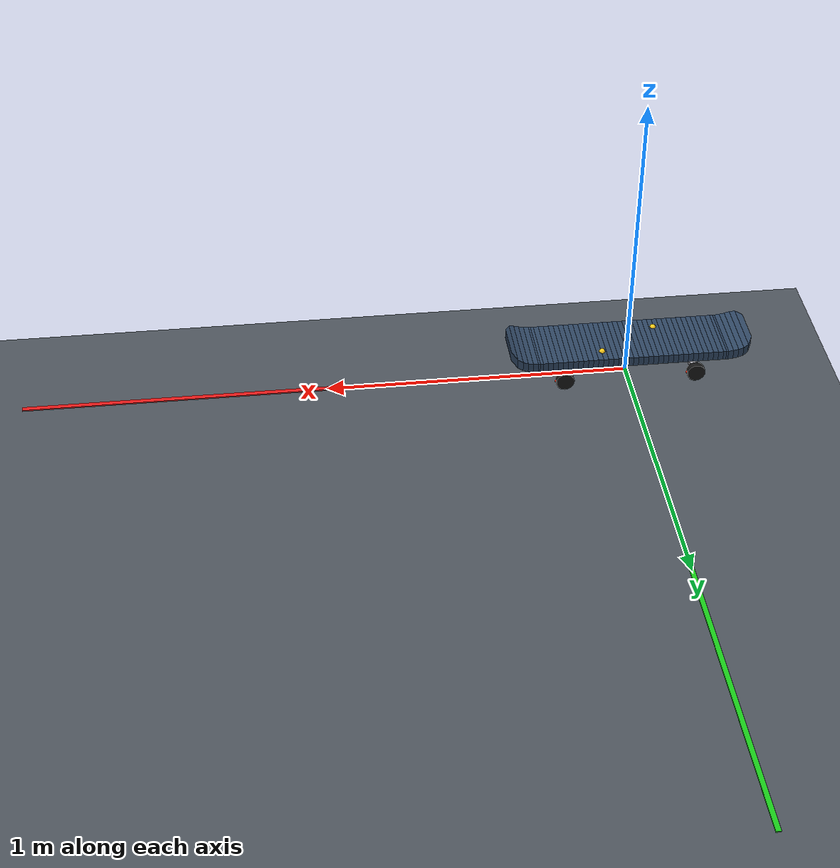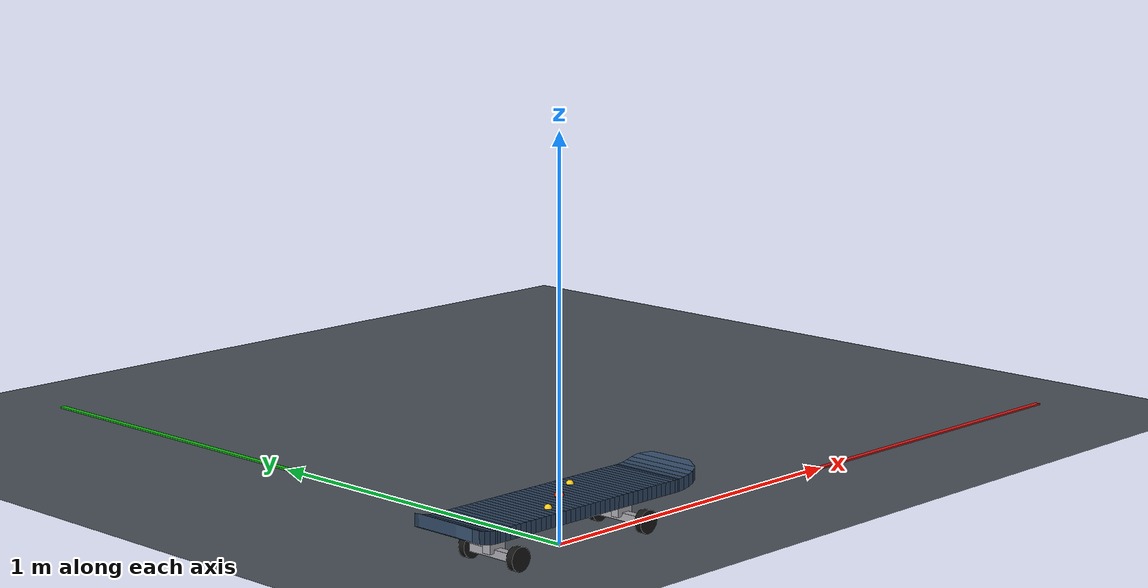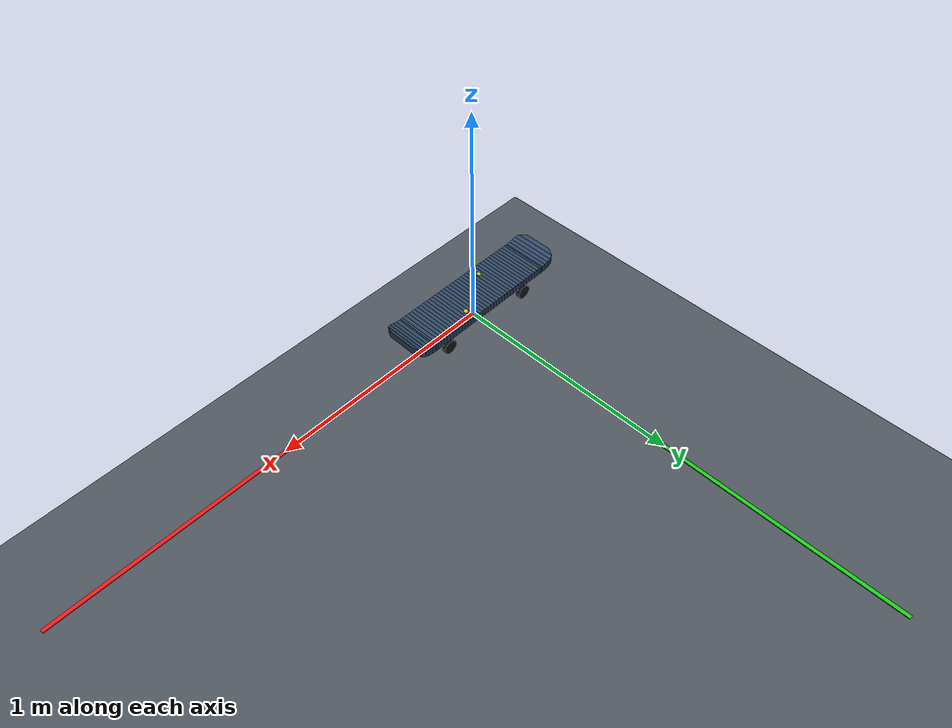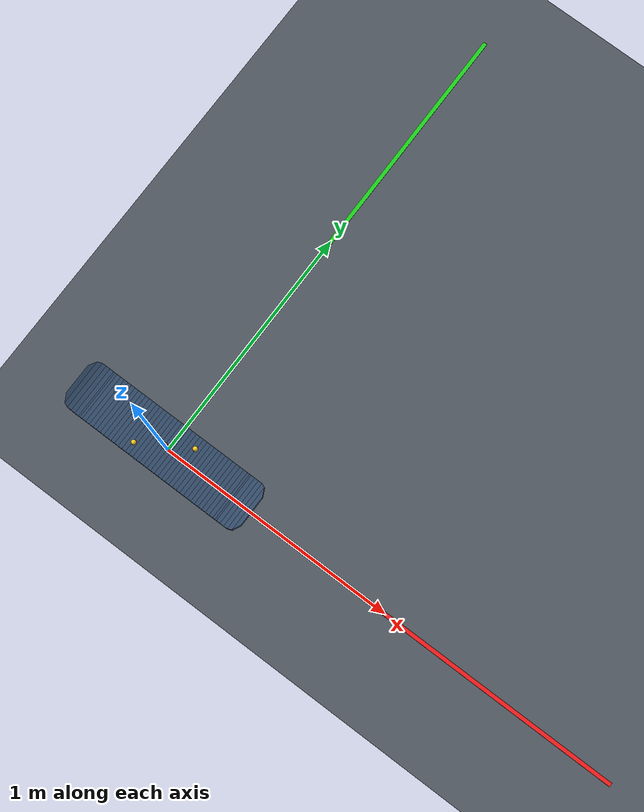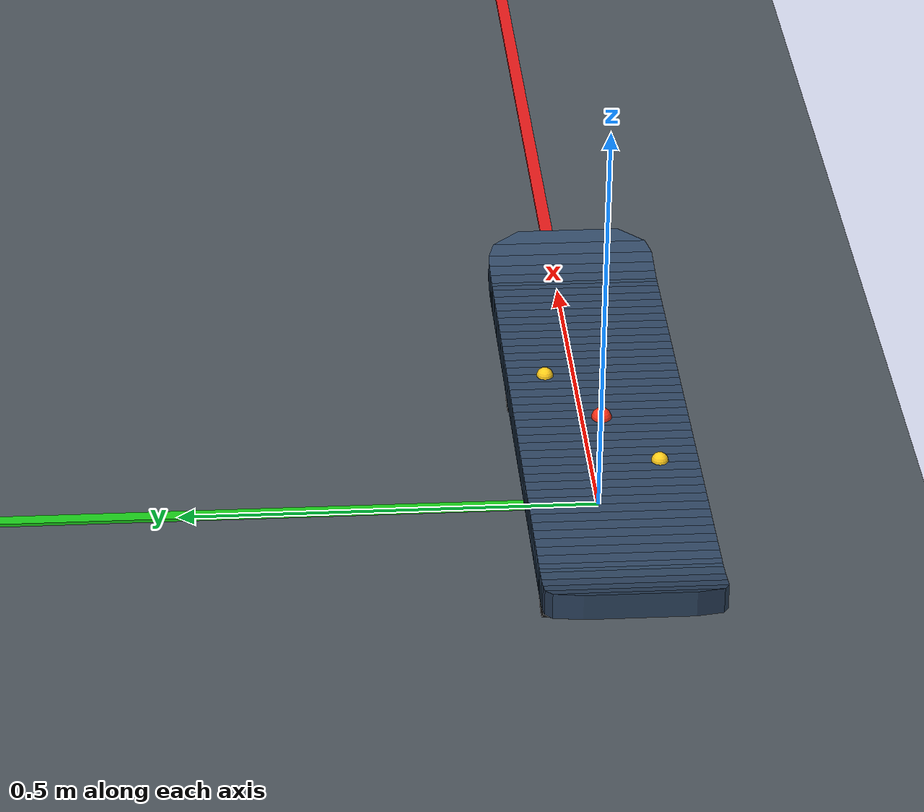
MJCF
<mujoco model="skate-sim-board-street-truck">
      <compiler angle="radian" coordinate="local"/>
      <option gravity="0 0 -9.81" integrator="implicitfast" timestep=".002"/>
      <visual><headlight diffuse=".8 .8 .8" ambient=".35 .35 .35"/></visual>
      <asset>
        <mesh name="deck_strip_0" vertex="-0.4 -0.0625000013 0.009 -0.4 -0.0625000013 0.041 -0.4 0.0625000013 0.009 -0.4 0.0625000013 0.041 -0.383333333 -0.0949893145 0.000598079561 -0.383333333 -0.0949893145 0.0325980796 -0.383333333 0.0949893145 0.000598079561 -0.383333333 0.0949893145 0.0325980796"/><mesh name="deck_strip_1" vertex="-0.383333333 -0.0949893145 0.000598079561 -0.383333333 -0.0949893145 0.0325980796 -0.383333333 0.0949893145 0.000598079561 -0.383333333 0.0949893145 0.0325980796 -0.366666667 -0.101940532 -0.00608916324 -0.366666667 -0.101940532 0.0259108368 -0.366666667 0.101940532 -0.00608916324 -0.366666667 0.101940532 0.0259108368"/><mesh name="deck_strip_2" vertex="-0.366666667 -0.101940532 -0.00608916324 -0.366666667 -0.101940532 0.0259108368 -0.366666667 0.101940532 -0.00608916324 -0.366666667 0.101940532 0.0259108368 -0.35 -0.1025 -0.0110617284 -0.35 -0.1025 0.0209382716 -0.35 0.1025 -0.0110617284 -0.35 0.1025 0.0209382716"/><mesh name="deck_strip_3" vertex="-0.35 -0.1025 -0.0110617284 -0.35 -0.1025 0.0209382716 -0.35 0.1025 -0.0110617284 -0.35 0.1025 0.0209382716 -0.333333333 -0.1025 -0.0143196159 -0.333333333 -0.1025 0.0176803841 -0.333333333 0.1025 -0.0143196159 -0.333333333 0.1025 0.0176803841"/><mesh name="deck_strip_4" vertex="-0.333333333 -0.1025 -0.0143196159 -0.333333333 -0.1025 0.0176803841 -0.333333333 0.1025 -0.0143196159 -0.333333333 0.1025 0.0176803841 -0.316666667 -0.1025 -0.0158628258 -0.316666667 -0.1025 0.0161371742 -0.316666667 0.1025 -0.0158628258 -0.316666667 0.1025 0.0161371742"/><mesh name="deck_strip_5" vertex="-0.316666667 -0.1025 -0.0158628258 -0.316666667 -0.1025 0.0161371742 -0.316666667 0.1025 -0.0158628258 -0.316666667 0.1025 0.0161371742 -0.31 -0.1025 -0.016 -0.31 -0.1025 0.016 -0.31 0.1025 -0.016 -0.31 0.1025 0.016"/><mesh name="deck_strip_6" vertex="-0.31 -0.1025 -0.016 -0.31 -0.1025 0.016 -0.31 0.1025 -0.016 -0.31 0.1025 0.016 -0.3 -0.1025 -0.016 -0.3 -0.1025 0.016 -0.3 0.1025 -0.016 -0.3 0.1025 0.016"/><mesh name="deck_strip_7" vertex="-0.3 -0.1025 -0.016 -0.3 -0.1025 0.016 -0.3 0.1025 -0.016 -0.3 0.1025 0.016 -0.283333333 -0.1025 -0.016 -0.283333333 -0.1025 0.016 -0.283333333 0.1025 -0.016 -0.283333333 0.1025 0.016"/><mesh name="deck_strip_8" vertex="-0.283333333 -0.1025 -0.016 -0.283333333 -0.1025 0.016 -0.283333333 0.1025 -0.016 -0.283333333 0.1025 0.016 -0.266666667 -0.1025 -0.016 -0.266666667 -0.1025 0.016 -0.266666667 0.1025 -0.016 -0.266666667 0.1025 0.016"/><mesh name="deck_strip_9" vertex="-0.266666667 -0.1025 -0.016 -0.266666667 -0.1025 0.016 -0.266666667 0.1025 -0.016 -0.266666667 0.1025 0.016 -0.25 -0.1025 -0.016 -0.25 -0.1025 0.016 -0.25 0.1025 -0.016 -0.25 0.1025 0.016"/><mesh name="deck_strip_10" vertex="-0.25 -0.1025 -0.016 -0.25 -0.1025 0.016 -0.25 0.1025 -0.016 -0.25 0.1025 0.016 -0.233333333 -0.1025 -0.016 -0.233333333 -0.1025 0.016 -0.233333333 0.1025 -0.016 -0.233333333 0.1025 0.016"/><mesh name="deck_strip_11" vertex="-0.233333333 -0.1025 -0.016 -0.233333333 -0.1025 0.016 -0.233333333 0.1025 -0.016 -0.233333333 0.1025 0.016 -0.216666667 -0.1025 -0.016 -0.216666667 -0.1025 0.016 -0.216666667 0.1025 -0.016 -0.216666667 0.1025 0.016"/><mesh name="deck_strip_12" vertex="-0.216666667 -0.1025 -0.016 -0.216666667 -0.1025 0.016 -0.216666667 0.1025 -0.016 -0.216666667 0.1025 0.016 -0.2 -0.1025 -0.016 -0.2 -0.1025 0.016 -0.2 0.1025 -0.016 -0.2 0.1025 0.016"/><mesh name="deck_strip_13" vertex="-0.2 -0.1025 -0.016 -0.2 -0.1025 0.016 -0.2 0.1025 -0.016 -0.2 0.1025 0.016 -0.183333333 -0.1025 -0.016 -0.183333333 -0.1025 0.016 -0.183333333 0.1025 -0.016 -0.183333333 0.1025 0.016"/><mesh name="deck_strip_14" vertex="-0.183333333 -0.1025 -0.016 -0.183333333 -0.1025 0.016 -0.183333333 0.1025 -0.016 -0.183333333 0.1025 0.016 -0.166666667 -0.1025 -0.016 -0.166666667 -0.1025 0.016 -0.166666667 0.1025 -0.016 -0.166666667 0.1025 0.016"/><mesh name="deck_strip_15" vertex="-0.166666667 -0.1025 -0.016 -0.166666667 -0.1025 0.016 -0.166666667 0.1025 -0.016 -0.166666667 0.1025 0.016 -0.15 -0.1025 -0.016 -0.15 -0.1025 0.016 -0.15 0.1025 -0.016 -0.15 0.1025 0.016"/><mesh name="deck_strip_16" vertex="-0.15 -0.1025 -0.016 -0.15 -0.1025 0.016 -0.15 0.1025 -0.016 -0.15 0.1025 0.016 -0.133333333 -0.1025 -0.016 -0.133333333 -0.1025 0.016 -0.133333333 0.1025 -0.016 -0.133333333 0.1025 0.016"/><mesh name="deck_strip_17" vertex="-0.133333333 -0.1025 -0.016 -0.133333333 -0.1025 0.016 -0.133333333 0.1025 -0.016 -0.133333333 0.1025 0.016 -0.116666667 -0.1025 -0.016 -0.116666667 -0.1025 0.016 -0.116666667 0.1025 -0.016 -0.116666667 0.1025 0.016"/><mesh name="deck_strip_18" vertex="-0.116666667 -0.1025 -0.016 -0.116666667 -0.1025 0.016 -0.116666667 0.1025 -0.016 -0.116666667 0.1025 0.016 -0.1 -0.1025 -0.016 -0.1 -0.1025 0.016 -0.1 0.1025 -0.016 -0.1 0.1025 0.016"/><mesh name="deck_strip_19" vertex="-0.1 -0.1025 -0.016 -0.1 -0.1025 0.016 -0.1 0.1025 -0.016 -0.1 0.1025 0.016 -0.0833333333 -0.1025 -0.016 -0.0833333333 -0.1025 0.016 -0.0833333333 0.1025 -0.016 -0.0833333333 0.1025 0.016"/><mesh name="deck_strip_20" vertex="-0.0833333333 -0.1025 -0.016 -0.0833333333 -0.1025 0.016 -0.0833333333 0.1025 -0.016 -0.0833333333 0.1025 0.016 -0.0666666667 -0.1025 -0.016 -0.0666666667 -0.1025 0.016 -0.0666666667 0.1025 -0.016 -0.0666666667 0.1025 0.016"/><mesh name="deck_strip_21" vertex="-0.0666666667 -0.1025 -0.016 -0.0666666667 -0.1025 0.016 -0.0666666667 0.1025 -0.016 -0.0666666667 0.1025 0.016 -0.05 -0.1025 -0.016 -0.05 -0.1025 0.016 -0.05 0.1025 -0.016 -0.05 0.1025 0.016"/><mesh name="deck_strip_22" vertex="-0.05 -0.1025 -0.016 -0.05 -0.1025 0.016 -0.05 0.1025 -0.016 -0.05 0.1025 0.016 -0.0333333333 -0.1025 -0.016 -0.0333333333 -0.1025 0.016 -0.0333333333 0.1025 -0.016 -0.0333333333 0.1025 0.016"/><mesh name="deck_strip_23" vertex="-0.0333333333 -0.1025 -0.016 -0.0333333333 -0.1025 0.016 -0.0333333333 0.1025 -0.016 -0.0333333333 0.1025 0.016 -0.0166666667 -0.1025 -0.016 -0.0166666667 -0.1025 0.016 -0.0166666667 0.1025 -0.016 -0.0166666667 0.1025 0.016"/><mesh name="deck_strip_24" vertex="-0.0166666667 -0.1025 -0.016 -0.0166666667 -0.1025 0.016 -0.0166666667 0.1025 -0.016 -0.0166666667 0.1025 0.016 5.55111512e-17 -0.1025 -0.016 5.55111512e-17 -0.1025 0.016 5.55111512e-17 0.1025 -0.016 5.55111512e-17 0.1025 0.016"/><mesh name="deck_strip_25" vertex="5.55111512e-17 -0.1025 -0.016 5.55111512e-17 -0.1025 0.016 5.55111512e-17 0.1025 -0.016 5.55111512e-17 0.1025 0.016 0.0166666667 -0.1025 -0.016 0.0166666667 -0.1025 0.016 0.0166666667 0.1025 -0.016 0.0166666667 0.1025 0.016"/><mesh name="deck_strip_26" vertex="0.0166666667 -0.1025 -0.016 0.0166666667 -0.1025 0.016 0.0166666667 0.1025 -0.016 0.0166666667 0.1025 0.016 0.0333333333 -0.1025 -0.016 0.0333333333 -0.1025 0.016 0.0333333333 0.1025 -0.016 0.0333333333 0.1025 0.016"/><mesh name="deck_strip_27" vertex="0.0333333333 -0.1025 -0.016 0.0333333333 -0.1025 0.016 0.0333333333 0.1025 -0.016 0.0333333333 0.1025 0.016 0.05 -0.1025 -0.016 0.05 -0.1025 0.016 0.05 0.1025 -0.016 0.05 0.1025 0.016"/><mesh name="deck_strip_28" vertex="0.05 -0.1025 -0.016 0.05 -0.1025 0.016 0.05 0.1025 -0.016 0.05 0.1025 0.016 0.0666666667 -0.1025 -0.016 0.0666666667 -0.1025 0.016 0.0666666667 0.1025 -0.016 0.0666666667 0.1025 0.016"/><mesh name="deck_strip_29" vertex="0.0666666667 -0.1025 -0.016 0.0666666667 -0.1025 0.016 0.0666666667 0.1025 -0.016 0.0666666667 0.1025 0.016 0.0833333333 -0.1025 -0.016 0.0833333333 -0.1025 0.016 0.0833333333 0.1025 -0.016 0.0833333333 0.1025 0.016"/><mesh name="deck_strip_30" vertex="0.0833333333 -0.1025 -0.016 0.0833333333 -0.1025 0.016 0.0833333333 0.1025 -0.016 0.0833333333 0.1025 0.016 0.1 -0.1025 -0.016 0.1 -0.1025 0.016 0.1 0.1025 -0.016 0.1 0.1025 0.016"/><mesh name="deck_strip_31" vertex="0.1 -0.1025 -0.016 0.1 -0.1025 0.016 0.1 0.1025 -0.016 0.1 0.1025 0.016 0.116666667 -0.1025 -0.016 0.116666667 -0.1025 0.016 0.116666667 0.1025 -0.016 0.116666667 0.1025 0.016"/><mesh name="deck_strip_32" vertex="0.116666667 -0.1025 -0.016 0.116666667 -0.1025 0.016 0.116666667 0.1025 -0.016 0.116666667 0.1025 0.016 0.133333333 -0.1025 -0.016 0.133333333 -0.1025 0.016 0.133333333 0.1025 -0.016 0.133333333 0.1025 0.016"/><mesh name="deck_strip_33" vertex="0.133333333 -0.1025 -0.016 0.133333333 -0.1025 0.016 0.133333333 0.1025 -0.016 0.133333333 0.1025 0.016 0.15 -0.1025 -0.016 0.15 -0.1025 0.016 0.15 0.1025 -0.016 0.15 0.1025 0.016"/><mesh name="deck_strip_34" vertex="0.15 -0.1025 -0.016 0.15 -0.1025 0.016 0.15 0.1025 -0.016 0.15 0.1025 0.016 0.166666667 -0.1025 -0.016 0.166666667 -0.1025 0.016 0.166666667 0.1025 -0.016 0.166666667 0.1025 0.016"/><mesh name="deck_strip_35" vertex="0.166666667 -0.1025 -0.016 0.166666667 -0.1025 0.016 0.166666667 0.1025 -0.016 0.166666667 0.1025 0.016 0.183333333 -0.1025 -0.016 0.183333333 -0.1025 0.016 0.183333333 0.1025 -0.016 0.183333333 0.1025 0.016"/><mesh name="deck_strip_36" vertex="0.183333333 -0.1025 -0.016 0.183333333 -0.1025 0.016 0.183333333 0.1025 -0.016 0.183333333 0.1025 0.016 0.2 -0.1025 -0.016 0.2 -0.1025 0.016 0.2 0.1025 -0.016 0.2 0.1025 0.016"/><mesh name="deck_strip_37" vertex="0.2 -0.1025 -0.016 0.2 -0.1025 0.016 0.2 0.1025 -0.016 0.2 0.1025 0.016 0.216666667 -0.1025 -0.016 0.216666667 -0.1025 0.016 0.216666667 0.1025 -0.016 0.216666667 0.1025 0.016"/><mesh name="deck_strip_38" vertex="0.216666667 -0.1025 -0.016 0.216666667 -0.1025 0.016 0.216666667 0.1025 -0.016 0.216666667 0.1025 0.016 0.233333333 -0.1025 -0.016 0.233333333 -0.1025 0.016 0.233333333 0.1025 -0.016 0.233333333 0.1025 0.016"/><mesh name="deck_strip_39" vertex="0.233333333 -0.1025 -0.016 0.233333333 -0.1025 0.016 0.233333333 0.1025 -0.016 0.233333333 0.1025 0.016 0.25 -0.1025 -0.016 0.25 -0.1025 0.016 0.25 0.1025 -0.016 0.25 0.1025 0.016"/><mesh name="deck_strip_40" vertex="0.25 -0.1025 -0.016 0.25 -0.1025 0.016 0.25 0.1025 -0.016 0.25 0.1025 0.016 0.266666667 -0.1025 -0.016 0.266666667 -0.1025 0.016 0.266666667 0.1025 -0.016 0.266666667 0.1025 0.016"/><mesh name="deck_strip_41" vertex="0.266666667 -0.1025 -0.016 0.266666667 -0.1025 0.016 0.266666667 0.1025 -0.016 0.266666667 0.1025 0.016 0.283333333 -0.1025 -0.016 0.283333333 -0.1025 0.016 0.283333333 0.1025 -0.016 0.283333333 0.1025 0.016"/><mesh name="deck_strip_42" vertex="0.283333333 -0.1025 -0.016 0.283333333 -0.1025 0.016 0.283333333 0.1025 -0.016 0.283333333 0.1025 0.016 0.3 -0.1025 -0.016 0.3 -0.1025 0.016 0.3 0.1025 -0.016 0.3 0.1025 0.016"/><mesh name="deck_strip_43" vertex="0.3 -0.1025 -0.016 0.3 -0.1025 0.016 0.3 0.1025 -0.016 0.3 0.1025 0.016 0.31 -0.1025 -0.016 0.31 -0.1025 0.016 0.31 0.1025 -0.016 0.31 0.1025 0.016"/><mesh name="deck_strip_44" vertex="0.31 -0.1025 -0.016 0.31 -0.1025 0.016 0.31 0.1025 -0.016 0.31 0.1025 0.016 0.316666667 -0.1025 -0.0158628258 0.316666667 -0.1025 0.0161371742 0.316666667 0.1025 -0.0158628258 0.316666667 0.1025 0.0161371742"/><mesh name="deck_strip_45" vertex="0.316666667 -0.1025 -0.0158628258 0.316666667 -0.1025 0.0161371742 0.316666667 0.1025 -0.0158628258 0.316666667 0.1025 0.0161371742 0.333333333 -0.1025 -0.0143196159 0.333333333 -0.1025 0.0176803841 0.333333333 0.1025 -0.0143196159 0.333333333 0.1025 0.0176803841"/><mesh name="deck_strip_46" vertex="0.333333333 -0.1025 -0.0143196159 0.333333333 -0.1025 0.0176803841 0.333333333 0.1025 -0.0143196159 0.333333333 0.1025 0.0176803841 0.35 -0.1025 -0.0110617284 0.35 -0.1025 0.0209382716 0.35 0.1025 -0.0110617284 0.35 0.1025 0.0209382716"/><mesh name="deck_strip_47" vertex="0.35 -0.1025 -0.0110617284 0.35 -0.1025 0.0209382716 0.35 0.1025 -0.0110617284 0.35 0.1025 0.0209382716 0.366666667 -0.101940532 -0.00608916324 0.366666667 -0.101940532 0.0259108368 0.366666667 0.101940532 -0.00608916324 0.366666667 0.101940532 0.0259108368"/><mesh name="deck_strip_48" vertex="0.366666667 -0.101940532 -0.00608916324 0.366666667 -0.101940532 0.0259108368 0.366666667 0.101940532 -0.00608916324 0.366666667 0.101940532 0.0259108368 0.383333333 -0.0949893145 0.000598079561 0.383333333 -0.0949893145 0.0325980796 0.383333333 0.0949893145 0.000598079561 0.383333333 0.0949893145 0.0325980796"/><mesh name="deck_strip_49" vertex="0.383333333 -0.0949893145 0.000598079561 0.383333333 -0.0949893145 0.0325980796 0.383333333 0.0949893145 0.000598079561 0.383333333 0.0949893145 0.0325980796 0.4 -0.0625000013 0.009 0.4 -0.0625000013 0.041 0.4 0.0625000013 0.009 0.4 0.0625000013 0.041"/>
        <texture name="grid" type="2d" builtin="checker" width="256" height="256" rgb1=".2 .23 .26" rgb2=".4 .43 .46"/>
        <material name="floor" texture="grid" texrepeat="10 10" texuniform="true"/>
        <mesh name="ramp" vertex="-.35 -.55 0 .35 -.55 0 -.35 .55 0 .35 .55 0 .35 -.55 .24 .35 .55 .24"/>
      </asset>
      <worldbody>
        <light name="key" pos="0 -2 4" directional="true"/>
        <geom name="ground" type="plane" size="5 5 .1" material="floor"/>
        <geom name="axis_x" type="box" pos="1 0 .002" size="1 .008 .002" rgba=".9 .1 .1 1" contype="0" conaffinity="0"/>
        <geom name="axis_y" type="box" pos="0 1 .002" size=".008 1 .002" rgba=".1 .8 .1 1" contype="0" conaffinity="0"/>

        <body name="deck" pos="0 0 0.106000" euler="0 0 0">
          <freejoint name="deck_free"/>
          <geom name="deck_collision" type="box" size="0.310000 0.102500 0.016000" mass="0" contype="0" conaffinity="0" rgba="0 0 0 0" group="5"/>
          <geom name="deck_strip_0" type="mesh" mesh="deck_strip_0" mass="0.0307605193038" rgba=".18 .27 .38 1"/><geom name="deck_strip_1" type="mesh" mesh="deck_strip_1" mass="0.0384639701429" rgba=".18 .27 .38 1"/><geom name="deck_strip_2" type="mesh" mesh="deck_strip_2" mass="0.039930943224" rgba=".18 .27 .38 1"/><geom name="deck_strip_3" type="mesh" mesh="deck_strip_3" mass="0.0400402174919" rgba=".18 .27 .38 1"/><geom name="deck_strip_4" type="mesh" mesh="deck_strip_4" mass="0.0400402174919" rgba=".18 .27 .38 1"/><geom name="deck_strip_5" type="mesh" mesh="deck_strip_5" mass="0.0160160869967" rgba=".18 .27 .38 1"/><geom name="deck_strip_6" type="mesh" mesh="deck_strip_6" mass="0.0240241304951" rgba=".18 .27 .38 1"/><geom name="deck_strip_7" type="mesh" mesh="deck_strip_7" mass="0.0400402174919" rgba=".18 .27 .38 1"/><geom name="deck_strip_8" type="mesh" mesh="deck_strip_8" mass="0.0400402174919" rgba=".18 .27 .38 1"/><geom name="deck_strip_9" type="mesh" mesh="deck_strip_9" mass="0.0400402174919" rgba=".18 .27 .38 1"/><geom name="deck_strip_10" type="mesh" mesh="deck_strip_10" mass="0.0400402174919" rgba=".18 .27 .38 1"/><geom name="deck_strip_11" type="mesh" mesh="deck_strip_11" mass="0.0400402174919" rgba=".18 .27 .38 1"/><geom name="deck_strip_12" type="mesh" mesh="deck_strip_12" mass="0.0400402174919" rgba=".18 .27 .38 1"/><geom name="deck_strip_13" type="mesh" mesh="deck_strip_13" mass="0.0400402174919" rgba=".18 .27 .38 1"/><geom name="deck_strip_14" type="mesh" mesh="deck_strip_14" mass="0.0400402174919" rgba=".18 .27 .38 1"/><geom name="deck_strip_15" type="mesh" mesh="deck_strip_15" mass="0.0400402174919" rgba=".18 .27 .38 1"/><geom name="deck_strip_16" type="mesh" mesh="deck_strip_16" mass="0.0400402174919" rgba=".18 .27 .38 1"/><geom name="deck_strip_17" type="mesh" mesh="deck_strip_17" mass="0.0400402174919" rgba=".18 .27 .38 1"/><geom name="deck_strip_18" type="mesh" mesh="deck_strip_18" mass="0.0400402174919" rgba=".18 .27 .38 1"/><geom name="deck_strip_19" type="mesh" mesh="deck_strip_19" mass="0.0400402174919" rgba=".18 .27 .38 1"/><geom name="deck_strip_20" type="mesh" mesh="deck_strip_20" mass="0.0400402174919" rgba=".18 .27 .38 1"/><geom name="deck_strip_21" type="mesh" mesh="deck_strip_21" mass="0.0400402174919" rgba=".18 .27 .38 1"/><geom name="deck_strip_22" type="mesh" mesh="deck_strip_22" mass="0.0400402174919" rgba=".18 .27 .38 1"/><geom name="deck_strip_23" type="mesh" mesh="deck_strip_23" mass="0.0400402174919" rgba=".18 .27 .38 1"/><geom name="deck_strip_24" type="mesh" mesh="deck_strip_24" mass="0.0400402174919" rgba=".18 .27 .38 1"/><geom name="deck_strip_25" type="mesh" mesh="deck_strip_25" mass="0.0400402174919" rgba=".18 .27 .38 1"/><geom name="deck_strip_26" type="mesh" mesh="deck_strip_26" mass="0.0400402174919" rgba=".18 .27 .38 1"/><geom name="deck_strip_27" type="mesh" mesh="deck_strip_27" mass="0.0400402174919" rgba=".18 .27 .38 1"/><geom name="deck_strip_28" type="mesh" mesh="deck_strip_28" mass="0.0400402174919" rgba=".18 .27 .38 1"/><geom name="deck_strip_29" type="mesh" mesh="deck_strip_29" mass="0.0400402174919" rgba=".18 .27 .38 1"/><geom name="deck_strip_30" type="mesh" mesh="deck_strip_30" mass="0.0400402174919" rgba=".18 .27 .38 1"/><geom name="deck_strip_31" type="mesh" mesh="deck_strip_31" mass="0.0400402174919" rgba=".18 .27 .38 1"/><geom name="deck_strip_32" type="mesh" mesh="deck_strip_32" mass="0.0400402174919" rgba=".18 .27 .38 1"/><geom name="deck_strip_33" type="mesh" mesh="deck_strip_33" mass="0.0400402174919" rgba=".18 .27 .38 1"/><geom name="deck_strip_34" type="mesh" mesh="deck_strip_34" mass="0.0400402174919" rgba=".18 .27 .38 1"/><geom name="deck_strip_35" type="mesh" mesh="deck_strip_35" mass="0.0400402174919" rgba=".18 .27 .38 1"/><geom name="deck_strip_36" type="mesh" mesh="deck_strip_36" mass="0.0400402174919" rgba=".18 .27 .38 1"/><geom name="deck_strip_37" type="mesh" mesh="deck_strip_37" mass="0.0400402174919" rgba=".18 .27 .38 1"/><geom name="deck_strip_38" type="mesh" mesh="deck_strip_38" mass="0.0400402174919" rgba=".18 .27 .38 1"/><geom name="deck_strip_39" type="mesh" mesh="deck_strip_39" mass="0.0400402174919" rgba=".18 .27 .38 1"/><geom name="deck_strip_40" type="mesh" mesh="deck_strip_40" mass="0.0400402174919" rgba=".18 .27 .38 1"/><geom name="deck_strip_41" type="mesh" mesh="deck_strip_41" mass="0.0400402174919" rgba=".18 .27 .38 1"/><geom name="deck_strip_42" type="mesh" mesh="deck_strip_42" mass="0.0400402174919" rgba=".18 .27 .38 1"/><geom name="deck_strip_43" type="mesh" mesh="deck_strip_43" mass="0.0240241304951" rgba=".18 .27 .38 1"/><geom name="deck_strip_44" type="mesh" mesh="deck_strip_44" mass="0.0160160869967" rgba=".18 .27 .38 1"/><geom name="deck_strip_45" type="mesh" mesh="deck_strip_45" mass="0.0400402174919" rgba=".18 .27 .38 1"/><geom name="deck_strip_46" type="mesh" mesh="deck_strip_46" mass="0.0400402174919" rgba=".18 .27 .38 1"/><geom name="deck_strip_47" type="mesh" mesh="deck_strip_47" mass="0.039930943224" rgba=".18 .27 .38 1"/><geom name="deck_strip_48" type="mesh" mesh="deck_strip_48" mass="0.0384639701429" rgba=".18 .27 .38 1"/><geom name="deck_strip_49" type="mesh" mesh="deck_strip_49" mass="0.0307605193038" rgba=".18 .27 .38 1"/>
          <site name="deck_top" pos="0 0 0.016000" size=".012" rgba="1 .2 .1 1"/>
          <site name="left_foot_anchor" pos="0.096800 0.057400 0.016000" size=".01" rgba="1 .8 .1 1"/>
          <site name="right_foot_anchor" pos="-0.096800 -0.057400 0.016000" size=".01" rgba="1 .8 .1 1"/>
          <body name="front_truck" pos="0.220000 0 -0.016000">
          <joint name="front_truck_tilt" type="hinge" axis="0.7071068967259818 0 0.7071066656470943" range="-0.35 0.35" stiffness="2.0" damping="0.08"/>
          <geom name="front_truck_collision" type="box" pos="0 0 -.030" size=".025 .012 .030" mass="0.120000" rgba=".65 .65 .68 1"/>
          <geom name="front_axle_collision" type="box" pos="0 0 -.060" size=".012 0.070000 .010" mass="0.080000" rgba=".65 .65 .68 1"/>
          <site name="front_truck_pivot" size=".005" rgba="1 .3 1 1"/>
           <site name="front_truck_axis" type="capsule" fromto="0 0 0 0.06363962070533837 0 0.06363959990823849" size=".002" rgba="1 .3 1 1" group="3"/>
          <body name="front_left" pos="0 0.080000 -0.060000">
      <joint name="front_left_spin" type="hinge" axis="0 1 0" damping=".02"/>
      <geom name="front_left_collision" type="cylinder" fromto="0 -0.010000 0 0 0.010000 0" size="0.030000" mass="0.075000" rgba=".08 .08 .08 1"/>
      <site name="front_left_axle" pos="0 0 0" size=".006" rgba="1 1 0 1"/>
      <site name="front_left_axis" type="capsule" fromto="0 -.04 0 0 .04 0" size=".002" rgba="1 1 0 1" group="3"/>
      <site name="front_left_marker" pos="0.030000 0 0" size=".004" rgba="1 .2 .1 1"/>
    </body><body name="front_right" pos="0 -0.080000 -0.060000">
      <joint name="front_right_spin" type="hinge" axis="0 1 0" damping=".02"/>
      <geom name="front_right_collision" type="cylinder" fromto="0 -0.010000 0 0 0.010000 0" size="0.030000" mass="0.075000" rgba=".08 .08 .08 1"/>
      <site name="front_right_axle" pos="0 0 0" size=".006" rgba="1 1 0 1"/>
      <site name="front_right_axis" type="capsule" fromto="0 -.04 0 0 .04 0" size=".002" rgba="1 1 0 1" group="3"/>
      <site name="front_right_marker" pos="0.030000 0 0" size=".004" rgba="1 .2 .1 1"/>
    </body>
        </body><body name="rear_truck" pos="-0.220000 0 -0.016000">
          <joint name="rear_truck_tilt" type="hinge" axis="0.7071068967259818 0 -0.7071066656470943" range="-0.35 0.35" stiffness="2.0" damping="0.08"/>
          <geom name="rear_truck_collision" type="box" pos="0 0 -.030" size=".025 .012 .030" mass="0.120000" rgba=".65 .65 .68 1"/>
          <geom name="rear_axle_collision" type="box" pos="0 0 -.060" size=".012 0.070000 .010" mass="0.080000" rgba=".65 .65 .68 1"/>
          <site name="rear_truck_pivot" size=".005" rgba="1 .3 1 1"/>
           <site name="rear_truck_axis" type="capsule" fromto="0 0 0 0.06363962070533837 0 -0.06363959990823849" size=".002" rgba="1 .3 1 1" group="3"/>
          <body name="rear_left" pos="0 0.080000 -0.060000">
      <joint name="rear_left_spin" type="hinge" axis="0 1 0" damping=".02"/>
      <geom name="rear_left_collision" type="cylinder" fromto="0 -0.010000 0 0 0.010000 0" size="0.030000" mass="0.075000" rgba=".08 .08 .08 1"/>
      <site name="rear_left_axle" pos="0 0 0" size=".006" rgba="1 1 0 1"/>
      <site name="rear_left_axis" type="capsule" fromto="0 -.04 0 0 .04 0" size=".002" rgba="1 1 0 1" group="3"/>
      <site name="rear_left_marker" pos="0.030000 0 0" size=".004" rgba="1 .2 .1 1"/>
    </body><body name="rear_right" pos="0 -0.080000 -0.060000">
      <joint name="rear_right_spin" type="hinge" axis="0 1 0" damping=".02"/>
      <geom name="rear_right_collision" type="cylinder" fromto="0 -0.010000 0 0 0.010000 0" size="0.030000" mass="0.075000" rgba=".08 .08 .08 1"/>
      <site name="rear_right_axle" pos="0 0 0" size=".006" rgba="1 1 0 1"/>
      <site name="rear_right_axis" type="capsule" fromto="0 -.04 0 0 .04 0" size=".002" rgba="1 1 0 1" group="3"/>
      <site name="rear_right_marker" pos="0.030000 0 0" size=".004" rgba="1 .2 .1 1"/>
    </body>
        </body>
        </body>
      </worldbody>
    </mujoco>
